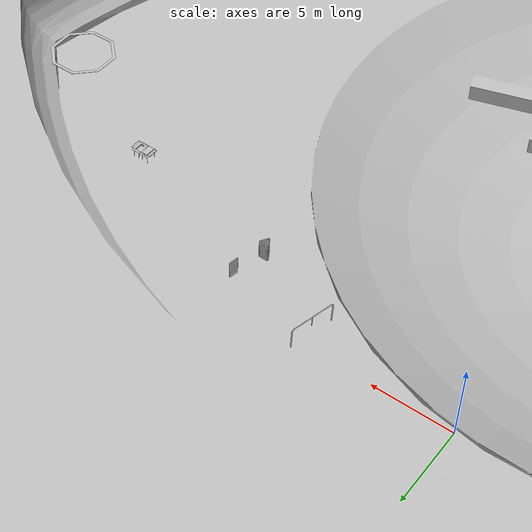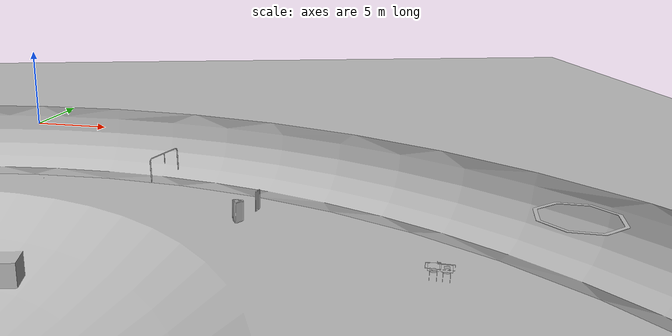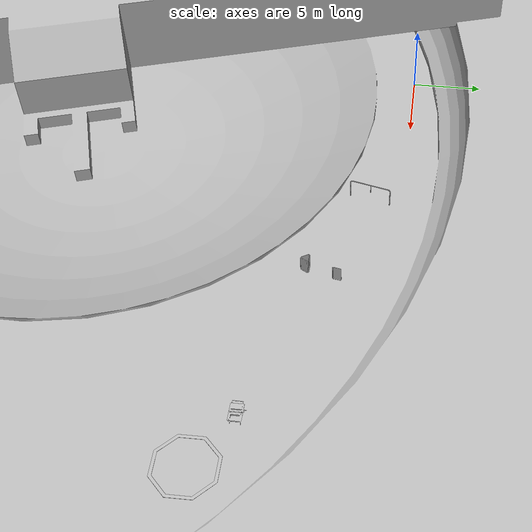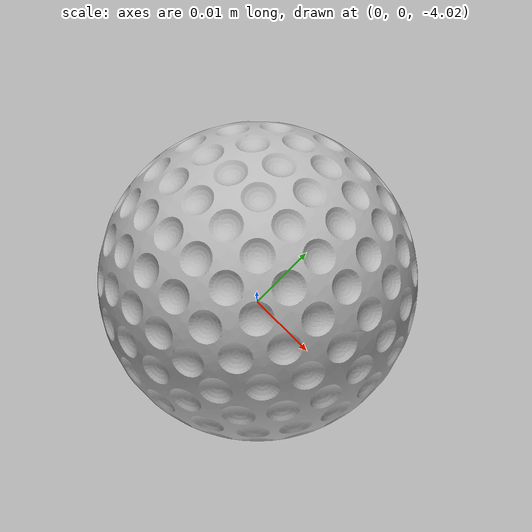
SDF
<sdf version="1.4">
 <world name="transdec">
  <physics default="true" name="default_physics" type="ode">
   <max_step_size>0.01</max_step_size>
   <real_time_factor>1</real_time_factor>
   <real_time_update_rate>100</real_time_update_rate>
   <ode><solver><type>quick</type><iters>50</iters><sor>1.2</sor></solver></ode>
  </physics>
  <scene>
   <ambient>0.9 0.9 0.9 1.0</ambient>
   <shadows>0</shadows>
   <sky><clouds><speed>2</speed></clouds></sky>
   <fog><color>0.1 0.5 0.5 1.0</color><type>linear</type><density>1</density><start>0</start><end>8</end></fog>
  </scene>
  <include><uri>model://sun</uri></include>
  <include><uri>model://transdec</uri><pose>-2 -27 -11.8 0 0 0.3</pose></include>
  <include>
   <uri>model://gate</uri>
   <pose>9.95015417584 -3.95635950022 -2.30577749607 -0.0379188783718 0 1.33555362475</pose>
  </include>
  <include>
   <uri>model://buoy</uri>
   <pose>16.8957557953 -4.21071468919 -2.86653937322 0 0 1.38584759599</pose>
  </include>
  <include>
   <uri>model://tribuoy</uri>
   <pose>16.1159645415 -6.6098771058 -3.06020960554 0 0 0.889180956978</pose>
  </include>
  <include>
   <uri>model://wolf_bin</uri>
   <pose>27.8787753432 -9.00015094164 -4 0 0 -3.15184929</pose>
   <name>bin</name>
  </include>
  <include><uri>model://octagon</uri><pose>34 -11 0 0 0 0</pose></include>
  <include><uri>model://ball</uri><pose>0 0 -4 0 0 0</pose><name>ball_0</name></include>
  <include><uri>model://ball</uri><pose>0 0 -4 0 0 0</pose><name>ball_1</name></include>
  <plugin filename="libuuv_underwater_current_ros_plugin.so" name="underwater_current_plugin">
   <namespace>hydrodynamics</namespace>
   <constant_current>
    <topic>current_velocity</topic>
    <velocity><mean>0</mean><min>-0.3</min><max>0.3</max><mu>0.0</mu><noiseAmp>0.1</noiseAmp></velocity>
    <horizontal_angle>
     <mean>0</mean>
     <min>-3.141592653589793238</min>
     <max>3.141592653589793238</max>
     <mu>0.0</mu>
     <noiseAmp>0.1</noiseAmp>
    </horizontal_angle>
    <vertical_angle>
     <mean>0</mean>
     <min>-3.141592653589793238</min>
     <max>3.141592653589793238</max>
     <mu>0.0</mu>
     <noiseAmp>0.0</noiseAmp>
    </vertical_angle>
   </constant_current>
  </plugin>
  <plugin filename="libuuv_sc_ros_interface_plugin.so" name="sc_interface"/>
 </world>
</sdf>

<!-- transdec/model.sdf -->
<sdf version="1.5">

<!-- Don't put name="transdec" because the naming conflict with the world and launch files will cause Gazebo to crash -->
<model name="competition_pool">
  <static>true</static>
  <link name="transdec_link">

  <visual name="transdec">
    <pose>0 0 0 0 0 0</pose>
    <geometry>
      <mesh><uri>model://transdec/meshes/transdec.dae</uri><scale>1 1 1</scale></mesh>
    </geometry>
  </visual>

  <collision name="transdec">
    <pose>0 0 0 0 0 0</pose>
    <geometry>
      <mesh><uri>model://transdec/meshes/transdec_collision.stl</uri><scale>1 1 1</scale></mesh>
    </geometry>
  </collision>

  </link>
</model>
</sdf>

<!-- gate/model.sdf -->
<sdf version="1.5">

<model name="gate">
  <static>true</static>
  <link name="gate_link">

  <visual name="gate">
    <pose>0 0 0 0 0 0</pose>
    <geometry>
      <mesh><uri>model://gate/meshes/gate.obj</uri><scale>1 1 1</scale></mesh>
    </geometry>
  </visual>

  <collision name="gate">
    <pose>0 0 0 0 0 0</pose>
    <geometry>
      <mesh><uri>model://gate/meshes/gate_collision.stl</uri><scale>1 1 1</scale></mesh>
    </geometry>
  </collision>

  </link>
</model>
</sdf>

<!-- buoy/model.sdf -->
<sdf version="1.5">

<model name="buoy">
  <static>true</static>
  <link name="buoy_link">

  <visual name="buoy">
    <pose>0 0 0 0 0 0</pose>
    <geometry>
      <mesh><uri>model://buoy/meshes/buoy.obj</uri><scale>1 1 1</scale></mesh>
    </geometry>
  </visual>

  <collision name="buoy">
    <pose>0 0 0 0 0 0</pose>
    <geometry>
      <box><size>0.66 0.04 1.28</size></box>
    </geometry>
  </collision>

  </link>
</model>
</sdf>

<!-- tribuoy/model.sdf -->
<sdf version="1.5">

<model name="tribuoy">
  <static>true</static>
  <link name="tribuoy_link">

  <visual name="tribuoy">
    <pose>0 0 0 0 0 0</pose>
    <geometry>
      <mesh><uri>model://tribuoy/meshes/tribuoy.obj</uri><scale>1 1 1</scale></mesh>
    </geometry>
  </visual>

  <collision name="tribuoy">
    <pose>0 0 0 0 0 0</pose>
    <geometry>
      <mesh><uri>model://tribuoy/meshes/tribuoy.obj</uri><scale>1 1 1</scale></mesh>
    </geometry>
  </collision>

  </link>
</model>
</sdf>

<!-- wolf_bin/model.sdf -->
<sdf version="1.5">

<model name="wolf_bin">
  <static>true</static>
  <link name="wolf_bin_link">

  <visual name="wolf_bin">
    <pose>0 0 0 0 0 0</pose>
    <geometry>
      <mesh><uri>model://wolf_bin/meshes/wolf.obj</uri><scale>1 1 1</scale></mesh>
    </geometry>
  </visual>

  <collision name="wolf_bin">
    <pose>0 0 0 0 0 0</pose>
    <geometry>
      <mesh><uri>model://wolf_bin/meshes/wolf.obj</uri><scale>1 1 1</scale></mesh>
    </geometry>
  </collision>

  </link>
</model>
</sdf>

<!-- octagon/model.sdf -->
<sdf version="1.5">

<model name="octagon">
  <static>true</static>
  <link name="octagon_link">

  <visual name="octagon">
    <pose>0 0 0 0 0 0</pose>
    <geometry>
      <mesh><uri>model://octagon/meshes/octagon.obj</uri><scale>1 1 1</scale></mesh>
    </geometry>
  </visual>

  <collision name="octagon">
    <pose>0 0 0 0 0 0</pose>
    <geometry>
      <mesh><uri>model://octagon/meshes/octagon.obj</uri><scale>1 1 1</scale></mesh>
    </geometry>
  </collision>

  </link>
</model>
</sdf>

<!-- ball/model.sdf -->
<sdf version="1.5">

<model name="ball">
  <static>false</static>
  <link name="ball_link">

  <visual name="ball">
    <pose>0 0 0 0 0 0</pose>
    <geometry>
      <mesh><uri>model://ball/meshes/ball.obj</uri><scale>1 1 1</scale></mesh>
    </geometry>
  </visual>

  <collision name="ball">
    <pose>0 0 0 0 0 0</pose>
    <geometry>
      <sphere><radius>0.03</radius></sphere>
    </geometry>
  </collision>

  </link>
</model>
</sdf>
